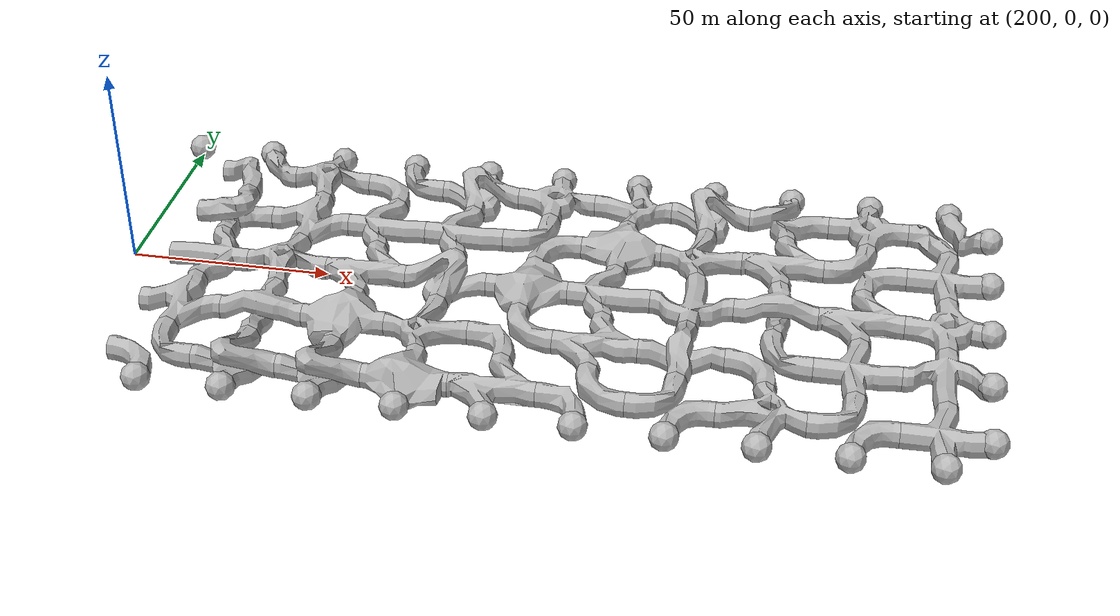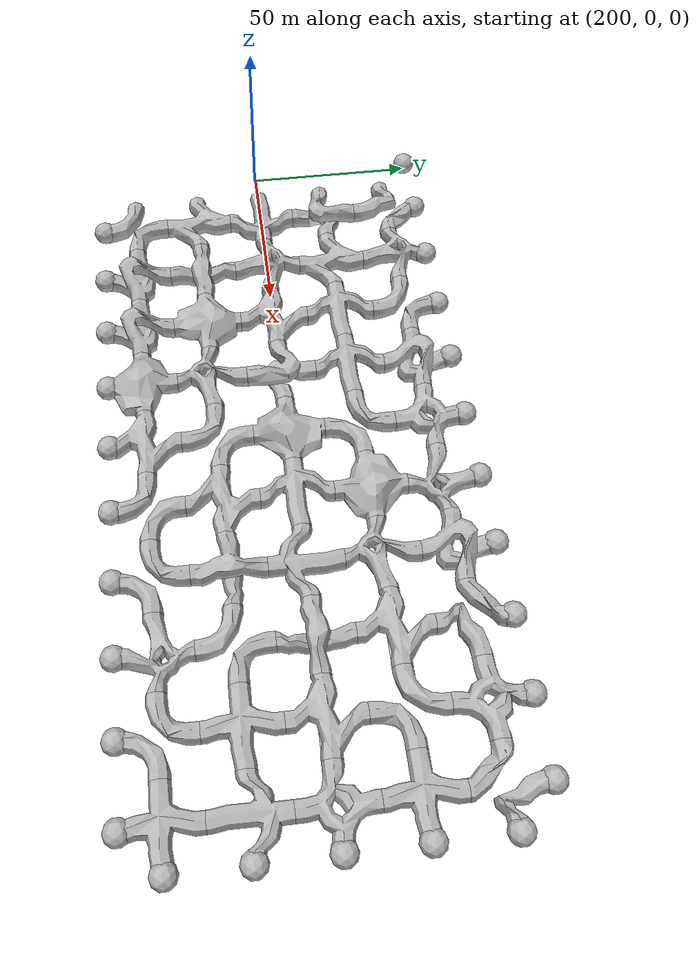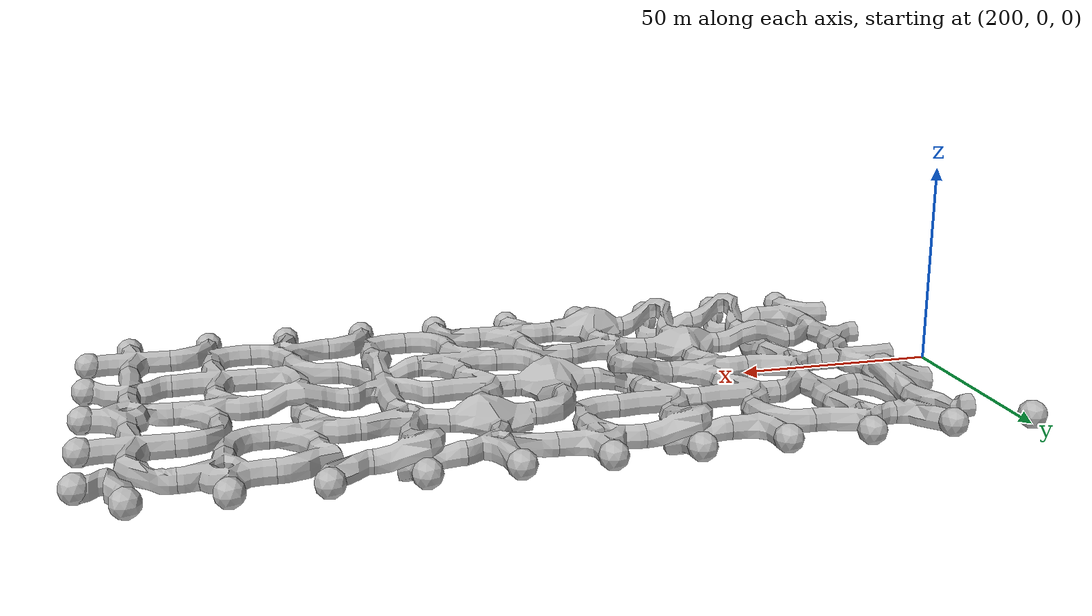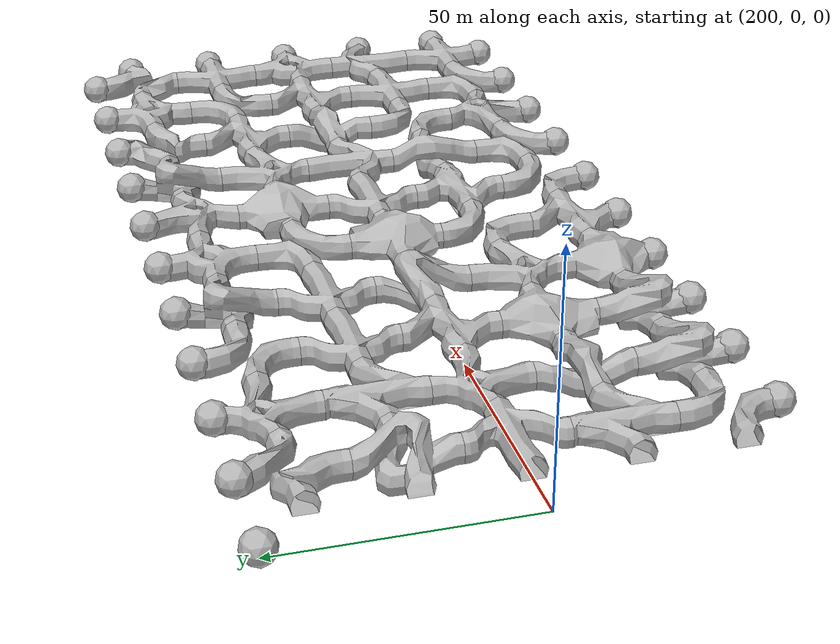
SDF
<sdf version="1.6">
 <world name="default">
  <include>
   <uri>model://cave_tile_2</uri>
   <name>tile_51</name>
   <pose>220 -40 0 0 0 1.5707963267948966</pose>
  </include>
  <include>
   <uri>model://cave_tile_5</uri>
   <name>tile_52</name>
   <pose>220 -20 0 0 0 1.5707963267948966</pose>
  </include>
  <include>
   <uri>model://cave_tile_7</uri>
   <name>tile_53</name>
   <pose>220 0 0 0 0 3.141592653589793</pose>
  </include>
  <include>
   <uri>model://cave_tile_9</uri>
   <name>tile_54</name>
   <pose>220 20 0 0 0 -1.5707963267948966</pose>
  </include>
  <include>
   <uri>model://cave_tile_4</uri>
   <name>tile_55</name>
   <pose>220 40 0 0 0 1.5707963267948966</pose>
  </include>
  <include>
   <uri>model://cave_tile_9</uri>
   <name>tile_56</name>
   <pose>240 -40 0 0 0 3.141592653589793</pose>
  </include>
  <include><uri>model://cave_tile_10</uri><name>tile_57</name><pose>240 -20 0 0 0 0</pose></include>
  <include>
   <uri>model://cave_tile_8</uri>
   <name>tile_58</name>
   <pose>240 0 0 0 0 1.5707963267948966</pose>
  </include>
  <include>
   <uri>model://cave_tile_5</uri>
   <name>tile_59</name>
   <pose>240 20 0 0 0 1.5707963267948966</pose>
  </include>
  <include>
   <uri>model://cave_tile_8</uri>
   <name>tile_60</name>
   <pose>240 40 0 0 0 1.5707963267948966</pose>
  </include>
  <include>
   <uri>model://cave_tile_9</uri>
   <name>tile_61</name>
   <pose>260 -40 0 0 0 3.141592653589793</pose>
  </include>
  <include>
   <uri>model://cave_tile_6</uri>
   <name>tile_62</name>
   <pose>260 -20 0 0 0 -1.5707963267948966</pose>
  </include>
  <include>
   <uri>model://cave_tile_5</uri>
   <name>tile_63</name>
   <pose>260 0 0 0 0 3.141592653589793</pose>
  </include>
  <include><uri>model://cave_tile_7</uri><name>tile_64</name><pose>260 20 0 0 0 0</pose></include>
  <include>
   <uri>model://cave_tile_2</uri>
   <name>tile_65</name>
   <pose>260 40 0 0 0 1.5707963267948966</pose>
  </include>
  <include><uri>model://cave_tile_6</uri><name>tile_66</name><pose>280 -40 0 0 0 0</pose></include>
  <include>
   <uri>model://cave_tile_8</uri>
   <name>tile_67</name>
   <pose>280 -20 0 0 0 3.141592653589793</pose>
  </include>
  <include><uri>model://cave_tile_9</uri><name>tile_68</name><pose>280 0 0 0 0 0</pose></include>
  <include><uri>model://cave_tile_7</uri><name>tile_69</name><pose>280 20 0 0 0 0</pose></include>
  <include>
   <uri>model://cave_tile_9</uri>
   <name>tile_70</name>
   <pose>280 40 0 0 0 1.5707963267948966</pose>
  </include>
  <include>
   <uri>model://cave_tile_5</uri>
   <name>tile_71</name>
   <pose>300 -40 0 0 0 3.141592653589793</pose>
  </include>
  <include>
   <uri>model://cave_tile_2</uri>
   <name>tile_72</name>
   <pose>300 -20 0 0 0 -1.5707963267948966</pose>
  </include>
  <include>
   <uri>model://cave_tile_6</uri>
   <name>tile_73</name>
   <pose>300 0 0 0 0 1.5707963267948966</pose>
  </include>
  <include>
   <uri>model://cave_tile_2</uri>
   <name>tile_74</name>
   <pose>300 20 0 0 0 3.141592653589793</pose>
  </include>
  <include>
   <uri>model://cave_tile_1</uri>
   <name>tile_75</name>
   <pose>300 40 0 0 0 1.5707963267948966</pose>
  </include>
  <include>
   <uri>model://cave_tile_2</uri>
   <name>tile_76</name>
   <pose>320 -40 0 0 0 -1.5707963267948966</pose>
  </include>
  <include><uri>model://cave_tile_5</uri><name>tile_77</name><pose>320 -20 0 0 0 0</pose></include>
  <include><uri>model://cave_tile_7</uri><name>tile_78</name><pose>320 0 0 0 0 0</pose></include>
  <include>
   <uri>model://cave_tile_6</uri>
   <name>tile_79</name>
   <pose>320 20 0 0 0 3.141592653589793</pose>
  </include>
  <include>
   <uri>model://cave_tile_8</uri>
   <name>tile_80</name>
   <pose>320 40 0 0 0 -1.5707963267948966</pose>
  </include>
  <include>
   <uri>model://cave_tile_2</uri>
   <name>tile_81</name>
   <pose>340 -40 0 0 0 3.141592653589793</pose>
  </include>
  <include>
   <uri>model://cave_tile_10</uri>
   <name>tile_82</name>
   <pose>340 -20 0 0 0 -1.5707963267948966</pose>
  </include>
  <include>
   <uri>model://cave_tile_7</uri>
   <name>tile_83</name>
   <pose>340 0 0 0 0 1.5707963267948966</pose>
  </include>
  <include>
   <uri>model://cave_tile_8</uri>
   <name>tile_84</name>
   <pose>340 20 0 0 0 3.141592653589793</pose>
  </include>
  <include>
   <uri>model://cave_tile_9</uri>
   <name>tile_85</name>
   <pose>340 40 0 0 0 1.5707963267948966</pose>
  </include>
  <include><uri>model://cave_tile_8</uri><name>tile_86</name><pose>360 -40 0 0 0 0</pose></include>
  <include>
   <uri>model://cave_tile_2</uri>
   <name>tile_87</name>
   <pose>360 -20 0 0 0 1.5707963267948966</pose>
  </include>
  <include>
   <uri>model://cave_tile_10</uri>
   <name>tile_88</name>
   <pose>360 0 0 0 0 3.141592653589793</pose>
  </include>
  <include>
   <uri>model://cave_tile_5</uri>
   <name>tile_89</name>
   <pose>360 20 0 0 0 3.141592653589793</pose>
  </include>
  <include>
   <uri>model://cave_tile_4</uri>
   <name>tile_90</name>
   <pose>360 40 0 0 0 3.141592653589793</pose>
  </include>
  <include>
   <uri>model://cave_tile_2</uri>
   <name>tile_91</name>
   <pose>380 -40 0 0 0 3.141592653589793</pose>
  </include>
  <include><uri>model://cave_tile_3</uri><name>tile_92</name><pose>380 -20 0 0 0 0</pose></include>
  <include>
   <uri>model://cave_tile_5</uri>
   <name>tile_93</name>
   <pose>380 0 0 0 0 3.141592653589793</pose>
  </include>
  <include><uri>model://cave_tile_2</uri><name>tile_94</name><pose>380 20 0 0 0 0</pose></include>
  <include>
   <uri>model://cave_tile_1</uri>
   <name>tile_95</name>
   <pose>380 40 0 0 0 3.141592653589793</pose>
  </include>
  <include><uri>model://cave_tile_3</uri><name>tile_96</name><pose>400 -40 0 0 0 0</pose></include>
  <include>
   <uri>model://cave_tile_7</uri>
   <name>tile_97</name>
   <pose>400 -20 0 0 0 -1.5707963267948966</pose>
  </include>
  <include>
   <uri>model://cave_tile_1</uri>
   <name>tile_98</name>
   <pose>400 0 0 0 0 -1.5707963267948966</pose>
  </include>
  <include><uri>model://cave_tile_3</uri><name>tile_99</name><pose>400 20 0 0 0 0</pose></include>
  <include>
   <uri>model://cave_tile_4</uri>
   <name>tile_100</name>
   <pose>400 40 0 0 0 -1.5707963267948966</pose>
  </include>
  <model name="blocker_120">
   <pose>200
    50.0
    0
    0
    0
    0</pose>
   <static>true</static>
   <link name="link">
    <pose>0 0 0 1.5707963267948966 0 0</pose>
    <collision name="collision">
     <geometry>
      <mesh><scale>1.2 1.2 1.2</scale><uri>model://cave_tile_blocker/meshes/cave_tile_blocker.obj</uri></mesh>
     </geometry>
    </collision>
    <visual name="visual">
     <geometry>
      <mesh><scale>1.2 1.2 1.2</scale><uri>model://cave_tile_blocker/meshes/cave_tile_blocker.obj</uri></mesh>
     </geometry>
    </visual>
   </link>
  </model>
  <model name="blocker_121">
   <pose>220
    -50.0
    0
    0
    0
    0</pose>
   <static>true</static>
   <link name="link">
    <pose>0 0 0 1.5707963267948966 0 0</pose>
    <collision name="collision">
     <geometry>
      <mesh><scale>1.2 1.2 1.2</scale><uri>model://cave_tile_blocker/meshes/cave_tile_blocker.obj</uri></mesh>
     </geometry>
    </collision>
    <visual name="visual">
     <geometry>
      <mesh><scale>1.2 1.2 1.2</scale><uri>model://cave_tile_blocker/meshes/cave_tile_blocker.obj</uri></mesh>
     </geometry>
    </visual>
   </link>
  </model>
  <model name="blocker_122">
   <pose>220
    50.0
    0
    0
    0
    0</pose>
   <static>true</static>
   <link name="link">
    <pose>0 0 0 1.5707963267948966 0 0</pose>
    <collision name="collision">
     <geometry>
      <mesh><scale>1.2 1.2 1.2</scale><uri>model://cave_tile_blocker/meshes/cave_tile_blocker.obj</uri></mesh>
     </geometry>
    </collision>
    <visual name="visual">
     <geometry>
      <mesh><scale>1.2 1.2 1.2</scale><uri>model://cave_tile_blocker/meshes/cave_tile_blocker.obj</uri></mesh>
     </geometry>
    </visual>
   </link>
  </model>
  <model name="blocker_123">
   <pose>240
    -50.0
    0
    0
    0
    0</pose>
   <static>true</static>
   <link name="link">
    <pose>0 0 0 1.5707963267948966 0 0</pose>
    <collision name="collision">
     <geometry>
      <mesh><scale>1.2 1.2 1.2</scale><uri>model://cave_tile_blocker/meshes/cave_tile_blocker.obj</uri></mesh>
     </geometry>
    </collision>
    <visual name="visual">
     <geometry>
      <mesh><scale>1.2 1.2 1.2</scale><uri>model://cave_tile_blocker/meshes/cave_tile_blocker.obj</uri></mesh>
     </geometry>
    </visual>
   </link>
  </model>
  <model name="blocker_124">
   <pose>240
    50.0
    0
    0
    0
    0</pose>
   <static>true</static>
   <link name="link">
    <pose>0 0 0 1.5707963267948966 0 0</pose>
    <collision name="collision">
     <geometry>
      <mesh><scale>1.2 1.2 1.2</scale><uri>model://cave_tile_blocker/meshes/cave_tile_blocker.obj</uri></mesh>
     </geometry>
    </collision>
    <visual name="visual">
     <geometry>
      <mesh><scale>1.2 1.2 1.2</scale><uri>model://cave_tile_blocker/meshes/cave_tile_blocker.obj</uri></mesh>
     </geometry>
    </visual>
   </link>
  </model>
  <model name="blocker_125">
   <pose>260
    -50.0
    0
    0
    0
    0</pose>
   <static>true</static>
   <link name="link">
    <pose>0 0 0 1.5707963267948966 0 0</pose>
    <collision name="collision">
     <geometry>
      <mesh><scale>1.2 1.2 1.2</scale><uri>model://cave_tile_blocker/meshes/cave_tile_blocker.obj</uri></mesh>
     </geometry>
    </collision>
    <visual name="visual">
     <geometry>
      <mesh><scale>1.2 1.2 1.2</scale><uri>model://cave_tile_blocker/meshes/cave_tile_blocker.obj</uri></mesh>
     </geometry>
    </visual>
   </link>
  </model>
  <model name="blocker_126">
   <pose>260
    50.0
    0
    0
    0
    0</pose>
   <static>true</static>
   <link name="link">
    <pose>0 0 0 1.5707963267948966 0 0</pose>
    <collision name="collision">
     <geometry>
      <mesh><scale>1.2 1.2 1.2</scale><uri>model://cave_tile_blocker/meshes/cave_tile_blocker.obj</uri></mesh>
     </geometry>
    </collision>
    <visual name="visual">
     <geometry>
      <mesh><scale>1.2 1.2 1.2</scale><uri>model://cave_tile_blocker/meshes/cave_tile_blocker.obj</uri></mesh>
     </geometry>
    </visual>
   </link>
  </model>
  <model name="blocker_127">
   <pose>280
    -50.0
    0
    0
    0
    0</pose>
   <static>true</static>
   <link name="link">
    <pose>0 0 0 1.5707963267948966 0 0</pose>
    <collision name="collision">
     <geometry>
      <mesh><scale>1.2 1.2 1.2</scale><uri>model://cave_tile_blocker/meshes/cave_tile_blocker.obj</uri></mesh>
     </geometry>
    </collision>
    <visual name="visual">
     <geometry>
      <mesh><scale>1.2 1.2 1.2</scale><uri>model://cave_tile_blocker/meshes/cave_tile_blocker.obj</uri></mesh>
     </geometry>
    </visual>
   </link>
  </model>
  <model name="blocker_128">
   <pose>280
    50.0
    0
    0
    0
    0</pose>
   <static>true</static>
   <link name="link">
    <pose>0 0 0 1.5707963267948966 0 0</pose>
    <collision name="collision">
     <geometry>
      <mesh><scale>1.2 1.2 1.2</scale><uri>model://cave_tile_blocker/meshes/cave_tile_blocker.obj</uri></mesh>
     </geometry>
    </collision>
    <visual name="visual">
     <geometry>
      <mesh><scale>1.2 1.2 1.2</scale><uri>model://cave_tile_blocker/meshes/cave_tile_blocker.obj</uri></mesh>
     </geometry>
    </visual>
   </link>
  </model>
  <model name="blocker_129">
   <pose>300
    -50.0
    0
    0
    0
    0</pose>
   <static>true</static>
   <link name="link">
    <pose>0 0 0 1.5707963267948966 0 0</pose>
    <collision name="collision">
     <geometry>
      <mesh><scale>1.2 1.2 1.2</scale><uri>model://cave_tile_blocker/meshes/cave_tile_blocker.obj</uri></mesh>
     </geometry>
    </collision>
    <visual name="visual">
     <geometry>
      <mesh><scale>1.2 1.2 1.2</scale><uri>model://cave_tile_blocker/meshes/cave_tile_blocker.obj</uri></mesh>
     </geometry>
    </visual>
   </link>
  </model>
  <model name="blocker_130">
   <pose>300
    50.0
    0
    0
    0
    0</pose>
   <static>true</static>
   <link name="link">
    <pose>0 0 0 1.5707963267948966 0 0</pose>
    <collision name="collision">
     <geometry>
      <mesh><scale>1.2 1.2 1.2</scale><uri>model://cave_tile_blocker/meshes/cave_tile_blocker.obj</uri></mesh>
     </geometry>
    </collision>
    <visual name="visual">
     <geometry>
      <mesh><scale>1.2 1.2 1.2</scale><uri>model://cave_tile_blocker/meshes/cave_tile_blocker.obj</uri></mesh>
     </geometry>
    </visual>
   </link>
  </model>
  <model name="blocker_131">
   <pose>320
    -50.0
    0
    0
    0
    0</pose>
   <static>true</static>
   <link name="link">
    <pose>0 0 0 1.5707963267948966 0 0</pose>
    <collision name="collision">
     <geometry>
      <mesh><scale>1.2 1.2 1.2</scale><uri>model://cave_tile_blocker/meshes/cave_tile_blocker.obj</uri></mesh>
     </geometry>
    </collision>
    <visual name="visual">
     <geometry>
      <mesh><scale>1.2 1.2 1.2</scale><uri>model://cave_tile_blocker/meshes/cave_tile_blocker.obj</uri></mesh>
     </geometry>
    </visual>
   </link>
  </model>
  <model name="blocker_132">
   <pose>320
    50.0
    0
    0
    0
    0</pose>
   <static>true</static>
   <link name="link">
    <pose>0 0 0 1.5707963267948966 0 0</pose>
    <collision name="collision">
     <geometry>
      <mesh><scale>1.2 1.2 1.2</scale><uri>model://cave_tile_blocker/meshes/cave_tile_blocker.obj</uri></mesh>
     </geometry>
    </collision>
    <visual name="visual">
     <geometry>
      <mesh><scale>1.2 1.2 1.2</scale><uri>model://cave_tile_blocker/meshes/cave_tile_blocker.obj</uri></mesh>
     </geometry>
    </visual>
   </link>
  </model>
  <model name="blocker_133">
   <pose>340
    -50.0
    0
    0
    0
    0</pose>
   <static>true</static>
   <link name="link">
    <pose>0 0 0 1.5707963267948966 0 0</pose>
    <collision name="collision">
     <geometry>
      <mesh><scale>1.2 1.2 1.2</scale><uri>model://cave_tile_blocker/meshes/cave_tile_blocker.obj</uri></mesh>
     </geometry>
    </collision>
    <visual name="visual">
     <geometry>
      <mesh><scale>1.2 1.2 1.2</scale><uri>model://cave_tile_blocker/meshes/cave_tile_blocker.obj</uri></mesh>
     </geometry>
    </visual>
   </link>
  </model>
  <model name="blocker_134">
   <pose>340
    50.0
    0
    0
    0
    0</pose>
   <static>true</static>
   <link name="link">
    <pose>0 0 0 1.5707963267948966 0 0</pose>
    <collision name="collision">
     <geometry>
      <mesh><scale>1.2 1.2 1.2</scale><uri>model://cave_tile_blocker/meshes/cave_tile_blocker.obj</uri></mesh>
     </geometry>
    </collision>
    <visual name="visual">
     <geometry>
      <mesh><scale>1.2 1.2 1.2</scale><uri>model://cave_tile_blocker/meshes/cave_tile_blocker.obj</uri></mesh>
     </geometry>
    </visual>
   </link>
  </model>
  <model name="blocker_135">
   <pose>360
    -50.0
    0
    0
    0
    0</pose>
   <static>true</static>
   <link name="link">
    <pose>0 0 0 1.5707963267948966 0 0</pose>
    <collision name="collision">
     <geometry>
      <mesh><scale>1.2 1.2 1.2</scale><uri>model://cave_tile_blocker/meshes/cave_tile_blocker.obj</uri></mesh>
     </geometry>
    </collision>
    <visual name="visual">
     <geometry>
      <mesh><scale>1.2 1.2 1.2</scale><uri>model://cave_tile_blocker/meshes/cave_tile_blocker.obj</uri></mesh>
     </geometry>
    </visual>
   </link>
  </model>
  <model name="blocker_136">
   <pose>360
    50.0
    0
    0
    0
    0</pose>
   <static>true</static>
   <link name="link">
    <pose>0 0 0 1.5707963267948966 0 0</pose>
    <collision name="collision">
     <geometry>
      <mesh><scale>1.2 1.2 1.2</scale><uri>model://cave_tile_blocker/meshes/cave_tile_blocker.obj</uri></mesh>
     </geometry>
    </collision>
    <visual name="visual">
     <geometry>
      <mesh><scale>1.2 1.2 1.2</scale><uri>model://cave_tile_blocker/meshes/cave_tile_blocker.obj</uri></mesh>
     </geometry>
    </visual>
   </link>
  </model>
  <model name="blocker_137">
   <pose>380
    -50.0
    0
    0
    0
    0</pose>
   <static>true</static>
   <link name="link">
    <pose>0 0 0 1.5707963267948966 0 0</pose>
    <collision name="collision">
     <geometry>
      <mesh><scale>1.2 1.2 1.2</scale><uri>model://cave_tile_blocker/meshes/cave_tile_blocker.obj</uri></mesh>
     </geometry>
    </collision>
    <visual name="visual">
     <geometry>
      <mesh><scale>1.2 1.2 1.2</scale><uri>model://cave_tile_blocker/meshes/cave_tile_blocker.obj</uri></mesh>
     </geometry>
    </visual>
   </link>
  </model>
  <model name="blocker_138">
   <pose>380
    50.0
    0
    0
    0
    0</pose>
   <static>true</static>
   <link name="link">
    <pose>0 0 0 1.5707963267948966 0 0</pose>
    <collision name="collision">
     <geometry>
      <mesh><scale>1.2 1.2 1.2</scale><uri>model://cave_tile_blocker/meshes/cave_tile_blocker.obj</uri></mesh>
     </geometry>
    </collision>
    <visual name="visual">
     <geometry>
      <mesh><scale>1.2 1.2 1.2</scale><uri>model://cave_tile_blocker/meshes/cave_tile_blocker.obj</uri></mesh>
     </geometry>
    </visual>
   </link>
  </model>
  <model name="blocker_139">
   <pose>400
    -50.0
    0
    0
    0
    0</pose>
   <static>true</static>
   <link name="link">
    <pose>0 0 0 1.5707963267948966 0 0</pose>
    <collision name="collision">
     <geometry>
      <mesh><scale>1.2 1.2 1.2</scale><uri>model://cave_tile_blocker/meshes/cave_tile_blocker.obj</uri></mesh>
     </geometry>
    </collision>
    <visual name="visual">
     <geometry>
      <mesh><scale>1.2 1.2 1.2</scale><uri>model://cave_tile_blocker/meshes/cave_tile_blocker.obj</uri></mesh>
     </geometry>
    </visual>
   </link>
  </model>
  <model name="blocker_140">
   <pose>400
    50.0
    0
    0
    0
    0</pose>
   <static>true</static>
   <link name="link">
    <pose>0 0 0 1.5707963267948966 0 0</pose>
    <collision name="collision">
     <geometry>
      <mesh><scale>1.2 1.2 1.2</scale><uri>model://cave_tile_blocker/meshes/cave_tile_blocker.obj</uri></mesh>
     </geometry>
    </collision>
    <visual name="visual">
     <geometry>
      <mesh><scale>1.2 1.2 1.2</scale><uri>model://cave_tile_blocker/meshes/cave_tile_blocker.obj</uri></mesh>
     </geometry>
    </visual>
   </link>
  </model>
  <model name="blocker_142">
   <pose>410.0
    -40
    0
    0
    0
    0</pose>
   <static>true</static>
   <link name="link">
    <pose>0 0 0 1.5707963267948966 0 0</pose>
    <collision name="collision">
     <geometry>
      <mesh><scale>1.2 1.2 1.2</scale><uri>model://cave_tile_blocker/meshes/cave_tile_blocker.obj</uri></mesh>
     </geometry>
    </collision>
    <visual name="visual">
     <geometry>
      <mesh><scale>1.2 1.2 1.2</scale><uri>model://cave_tile_blocker/meshes/cave_tile_blocker.obj</uri></mesh>
     </geometry>
    </visual>
   </link>
  </model>
  <model name="blocker_144">
   <pose>410.0
    -20
    0
    0
    0
    0</pose>
   <static>true</static>
   <link name="link">
    <pose>0 0 0 1.5707963267948966 0 0</pose>
    <collision name="collision">
     <geometry>
      <mesh><scale>1.2 1.2 1.2</scale><uri>model://cave_tile_blocker/meshes/cave_tile_blocker.obj</uri></mesh>
     </geometry>
    </collision>
    <visual name="visual">
     <geometry>
      <mesh><scale>1.2 1.2 1.2</scale><uri>model://cave_tile_blocker/meshes/cave_tile_blocker.obj</uri></mesh>
     </geometry>
    </visual>
   </link>
  </model>
  <model name="blocker_145">
   <pose>410.0
    0
    0
    0
    0
    0</pose>
   <static>true</static>
   <link name="link">
    <pose>0 0 0 1.5707963267948966 0 0</pose>
    <collision name="collision">
     <geometry>
      <mesh><scale>1.2 1.2 1.2</scale><uri>model://cave_tile_blocker/meshes/cave_tile_blocker.obj</uri></mesh>
     </geometry>
    </collision>
    <visual name="visual">
     <geometry>
      <mesh><scale>1.2 1.2 1.2</scale><uri>model://cave_tile_blocker/meshes/cave_tile_blocker.obj</uri></mesh>
     </geometry>
    </visual>
   </link>
  </model>
  <model name="blocker_147">
   <pose>410.0
    20
    0
    0
    0
    0</pose>
   <static>true</static>
   <link name="link">
    <pose>0 0 0 1.5707963267948966 0 0</pose>
    <collision name="collision">
     <geometry>
      <mesh><scale>1.2 1.2 1.2</scale><uri>model://cave_tile_blocker/meshes/cave_tile_blocker.obj</uri></mesh>
     </geometry>
    </collision>
    <visual name="visual">
     <geometry>
      <mesh><scale>1.2 1.2 1.2</scale><uri>model://cave_tile_blocker/meshes/cave_tile_blocker.obj</uri></mesh>
     </geometry>
    </visual>
   </link>
  </model>
  <model name="blocker_149">
   <pose>410.0
    40
    0
    0
    0
    0</pose>
   <static>true</static>
   <link name="link">
    <pose>0 0 0 1.5707963267948966 0 0</pose>
    <collision name="collision">
     <geometry>
      <mesh><scale>1.2 1.2 1.2</scale><uri>model://cave_tile_blocker/meshes/cave_tile_blocker.obj</uri></mesh>
     </geometry>
    </collision>
    <visual name="visual">
     <geometry>
      <mesh><scale>1.2 1.2 1.2</scale><uri>model://cave_tile_blocker/meshes/cave_tile_blocker.obj</uri></mesh>
     </geometry>
    </visual>
   </link>
  </model>
 </world>
</sdf>
